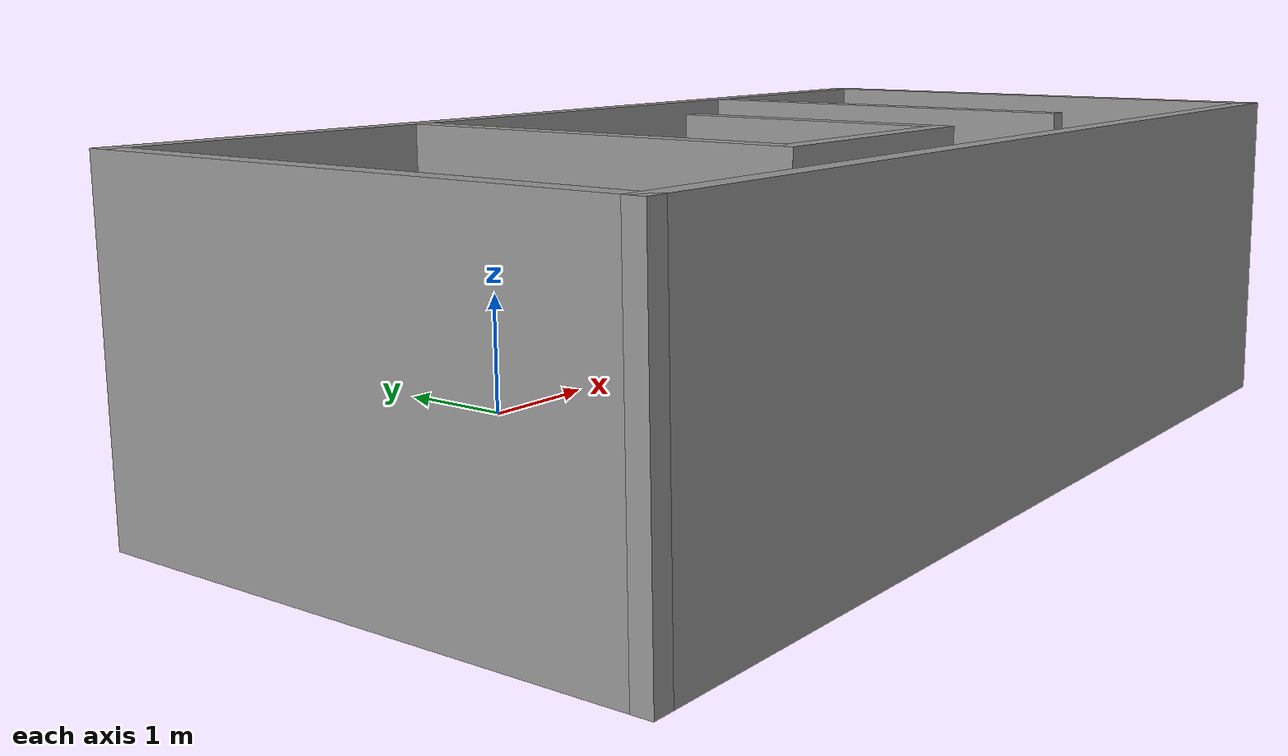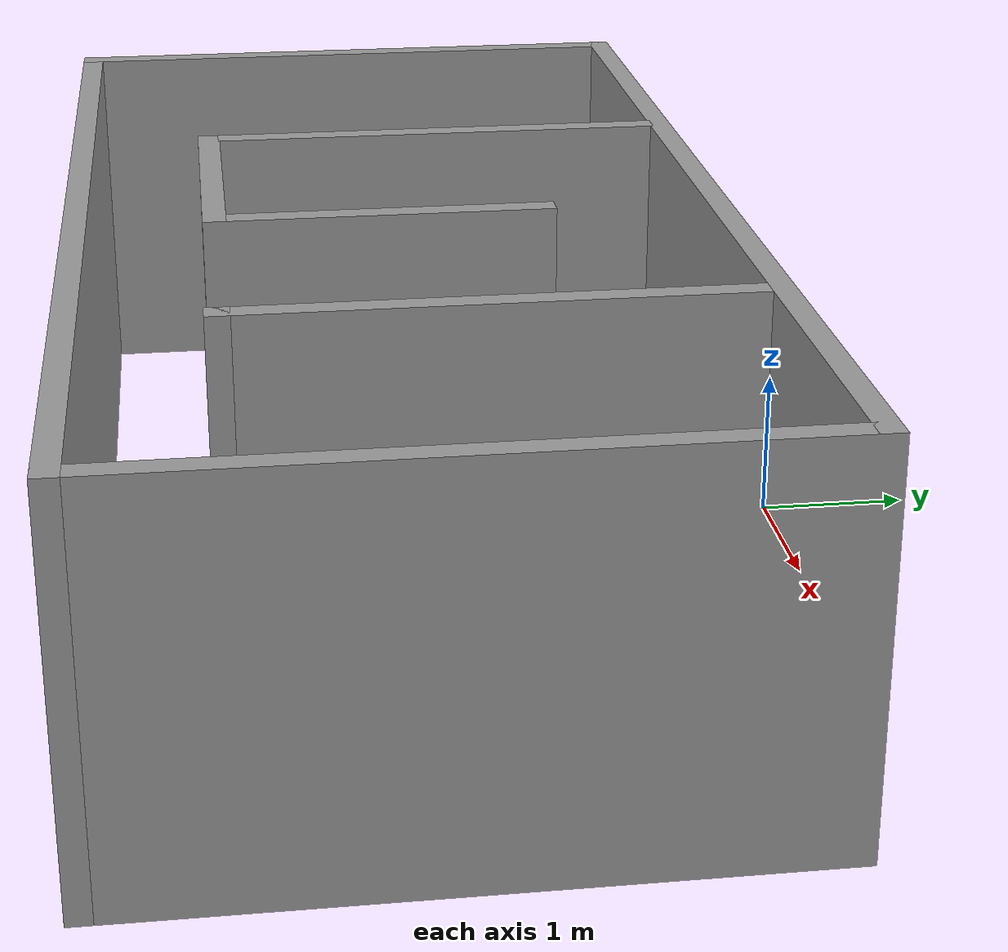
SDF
<?xml version='1.0'?>
<sdf version='1.7'>
  <model name='maze'>
    <pose>0.31 -2.3725 0 0 -0 0</pose>
    <link name='Wall_0'>
      <collision name='Wall_0_Collision'>
        <geometry>
          <box>
            <size>8.25 0.15 2.5</size>
          </box>
        </geometry>
        <pose>0 0 1.25 0 -0 0</pose>
      </collision>
      <visual name='Wall_0_Visual'>
        <pose>0 0 1.25 0 -0 0</pose>
        <geometry>
          <box>
            <size>8.25 0.15 2.5</size>
          </box>
        </geometry>
        <material>
          <script>
            <uri>file://media/materials/scripts/gazebo.material</uri>
            <name>Gazebo/Grey</name>
          </script>
          <ambient>1 1 1 1</ambient>
        </material>
        <meta>
          <layer>0</layer>
        </meta>
      </visual>
      <pose>-0 1.8025 0 0 -0 0</pose>
    </link>
    <link name='Wall_1'>
      <collision name='Wall_1_Collision'>
        <geometry>
          <box>
            <size>4.25 0.15 2.5</size>
          </box>
        </geometry>
        <pose>0 0 1.25 0 -0 0</pose>
      </collision>
      <visual name='Wall_1_Visual'>
        <pose>0 0 1.25 0 -0 0</pose>
        <geometry>
          <box>
            <size>4.25 0.15 2.5</size>
          </box>
        </geometry>
        <material>
          <script>
            <uri>file://media/materials/scripts/gazebo.material</uri>
            <name>Gazebo/Grey</name>
          </script>
          <ambient>1 1 1 1</ambient>
        </material>
        <meta>
          <layer>0</layer>
        </meta>
      </visual>
      <pose>4.05 -0.2475 0 0 -0 -1.5708</pose>
    </link>
    <link name='Wall_11'>
      <collision name='Wall_11_Collision'>
        <geometry>
          <box>
            <size>3.25 0.15 2.5</size>
          </box>
        </geometry>
        <pose>0 0 1.25 0 -0 0</pose>
      </collision>
      <visual name='Wall_11_Visual'>
        <pose>0 0 1.25 0 -0 0</pose>
        <geometry>
          <box>
            <size>3.25 0.15 2.5</size>
          </box>
        </geometry>
        <material>
          <script>
            <uri>file://media/materials/scripts/gazebo.material</uri>
            <name>Gazebo/Grey</name>
          </script>
          <ambient>1 1 1 1</ambient>
        </material>
        <meta>
          <layer>0</layer>
        </meta>
      </visual>
      <pose>1.96 0.1025 0 0 -0 -1.5708</pose>
    </link>
    <link name='Wall_12'>
      <collision name='Wall_12_Collision'>
        <geometry>
          <box>
            <size>0.15 0.15 2.5</size>
          </box>
        </geometry>
        <pose>0 0 1.25 0 -0 0</pose>
      </collision>
      <visual name='Wall_12_Visual'>
        <pose>0 0 1.25 0 -0 0</pose>
        <geometry>
          <box>
            <size>0.15 0.15 2.5</size>
          </box>
        </geometry>
        <material>
          <script>
            <uri>file://media/materials/scripts/gazebo.material</uri>
            <name>Gazebo/Grey</name>
          </script>
          <ambient>1 1 1 1</ambient>
        </material>
        <meta>
          <layer>0</layer>
        </meta>
      </visual>
      <pose>1.96 -1.4475 0 0 -0 0</pose>
    </link>
    <link name='Wall_2'>
      <collision name='Wall_2_Collision'>
        <geometry>
          <box>
            <size>8.25 0.15 2.5</size>
          </box>
        </geometry>
        <pose>0 0 1.25 0 -0 0</pose>
      </collision>
      <visual name='Wall_2_Visual'>
        <pose>0 0 1.25 0 -0 0</pose>
        <geometry>
          <box>
            <size>8.25 0.15 2.5</size>
          </box>
        </geometry>
        <material>
          <script>
            <uri>file://media/materials/scripts/gazebo.material</uri>
            <name>Gazebo/Grey</name>
          </script>
          <ambient>1 1 1 1</ambient>
        </material>
        <meta>
          <layer>0</layer>
        </meta>
      </visual>
      <pose>-0 -2.2975 0 0 -0 3.14159</pose>
    </link>
    <link name='Wall_3'>
      <collision name='Wall_3_Collision'>
        <geometry>
          <box>
            <size>4.25 0.15 2.5</size>
          </box>
        </geometry>
        <pose>0 0 1.25 0 -0 0</pose>
      </collision>
      <visual name='Wall_3_Visual'>
        <pose>0 0 1.25 0 -0 0</pose>
        <geometry>
          <box>
            <size>4.25 0.15 2.5</size>
          </box>
        </geometry>
        <material>
          <script>
            <uri>file://media/materials/scripts/gazebo.material</uri>
            <name>Gazebo/Grey</name>
          </script>
          <ambient>1 1 1 1</ambient>
        </material>
        <meta>
          <layer>0</layer>
        </meta>
      </visual>
      <pose>-4.05 -0.2475 0 0 -0 1.5708</pose>
    </link>
    <link name='Wall_4'>
      <collision name='Wall_4_Collision'>
        <geometry>
          <box>
            <size>0.15 0.15 2.5</size>
          </box>
        </geometry>
        <pose>0 0 1.25 0 -0 0</pose>
      </collision>
      <visual name='Wall_4_Visual'>
        <pose>0 0 1.25 0 -0 0</pose>
        <geometry>
          <box>
            <size>0.15 0.15 2.5</size>
          </box>
        </geometry>
        <material>
          <script>
            <uri>file://media/materials/scripts/gazebo.material</uri>
            <name>Gazebo/Grey</name>
          </script>
          <ambient>1 1 1 1</ambient>
        </material>
        <meta>
          <layer>0</layer>
        </meta>
      </visual>
      <pose>-4.05 1.8025 0 0 -0 0</pose>
    </link>
    <link name='Wall_5'>
      <collision name='Wall_5_Collision'>
        <geometry>
          <box>
            <size>0.15 0.15 2.5</size>
          </box>
        </geometry>
        <pose>0 0 1.25 0 -0 0</pose>
      </collision>
      <visual name='Wall_5_Visual'>
        <pose>0 0 1.25 0 -0 0</pose>
        <geometry>
          <box>
            <size>0.15 0.15 2.5</size>
          </box>
        </geometry>
        <material>
          <script>
            <uri>file://media/materials/scripts/gazebo.material</uri>
            <name>Gazebo/Grey</name>
          </script>
          <ambient>1 1 1 1</ambient>
        </material>
        <meta>
          <layer>0</layer>
        </meta>
      </visual>
      <pose>-4.05 1.8025 0 0 -0 0</pose>
    </link>
    <link name='Wall_7'>
      <collision name='Wall_7_Collision'>
        <geometry>
          <box>
            <size>3.25 0.15 2.5</size>
          </box>
        </geometry>
        <pose>0 0 1.25 0 -0 0</pose>
      </collision>
      <visual name='Wall_7_Visual'>
        <pose>0 0 1.25 0 -0 0</pose>
        <geometry>
          <box>
            <size>3.25 0.15 2.5</size>
          </box>
        </geometry>
        <material>
          <script>
            <uri>file://media/materials/scripts/gazebo.material</uri>
            <name>Gazebo/Grey</name>
          </script>
          <ambient>1 1 1 1</ambient>
        </material>
        <meta>
          <layer>0</layer>
        </meta>
      </visual>
      <pose>-1.61 0.1225 0 0 -0 -1.5708</pose>
    </link>
    <link name='Wall_8'>
      <collision name='Wall_8_Collision'>
        <geometry>
          <box>
            <size>2 0.15 2.5</size>
          </box>
        </geometry>
        <pose>0 0 1.25 0 -0 0</pose>
      </collision>
      <visual name='Wall_8_Visual'>
        <pose>0 0 1.25 0 -0 0</pose>
        <geometry>
          <box>
            <size>2 0.15 2.5</size>
          </box>
        </geometry>
        <material>
          <script>
            <uri>file://media/materials/scripts/gazebo.material</uri>
            <name>Gazebo/Grey</name>
          </script>
          <ambient>1 1 1 1</ambient>
        </material>
        <meta>
          <layer>0</layer>
        </meta>
      </visual>
      <pose>-0.685 -1.4275 0 0 -0 0</pose>
    </link>
    <link name='Wall_9'>
      <collision name='Wall_9_Collision'>
        <geometry>
          <box>
            <size>2.25 0.15 2.5</size>
          </box>
        </geometry>
        <pose>0 0 1.25 0 -0 0</pose>
      </collision>
      <visual name='Wall_9_Visual'>
        <pose>0 0 1.25 0 -0 0</pose>
        <geometry>
          <box>
            <size>2.25 0.15 2.5</size>
          </box>
        </geometry>
        <material>
          <script>
            <uri>file://media/materials/scripts/gazebo.material</uri>
            <name>Gazebo/Grey</name>
          </script>
          <ambient>1 1 1 1</ambient>
        </material>
        <meta>
          <layer>0</layer>
        </meta>
      </visual>
      <pose>0.24 -0.3775 0 0 -0 1.5708</pose>
    </link>
    <static>1</static>
  </model>
</sdf>
